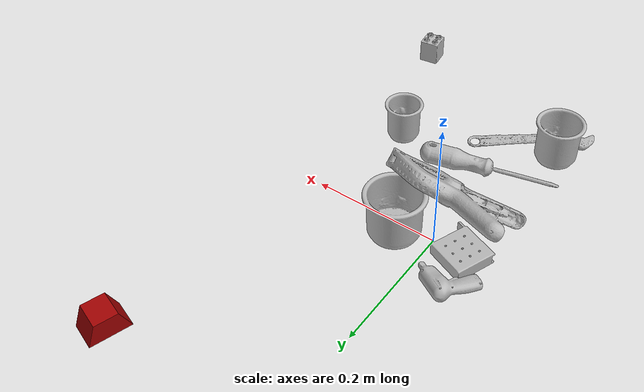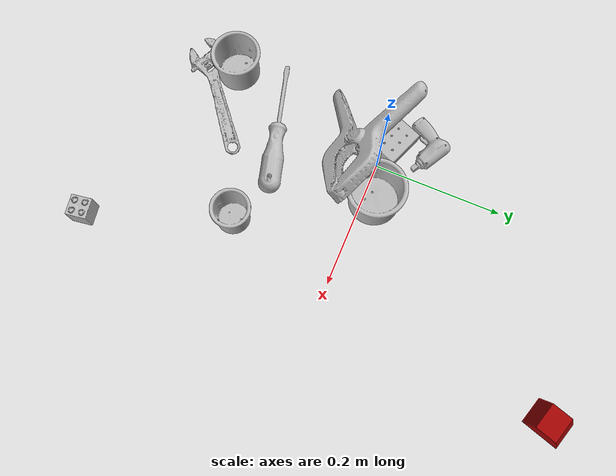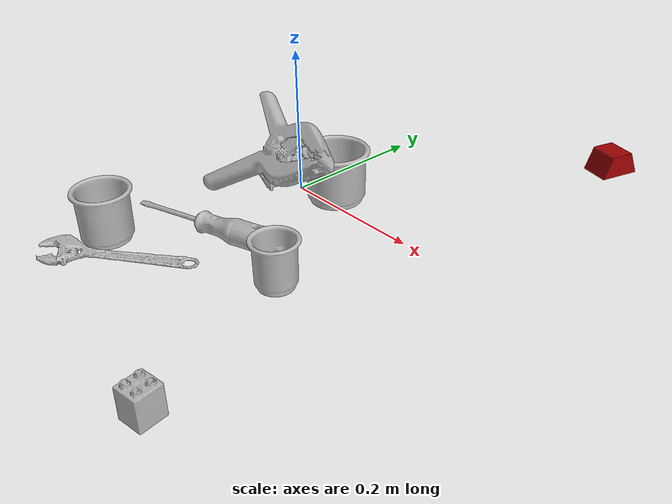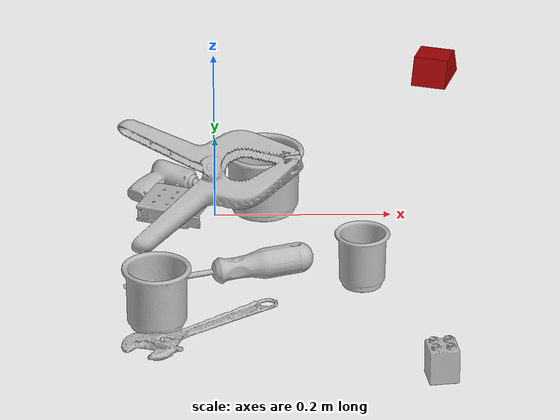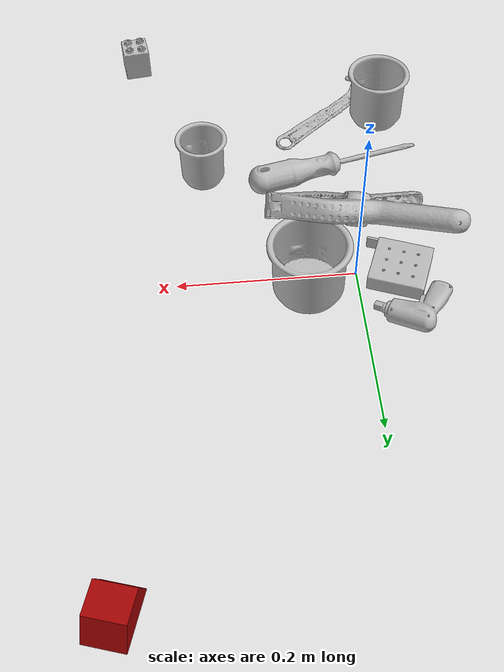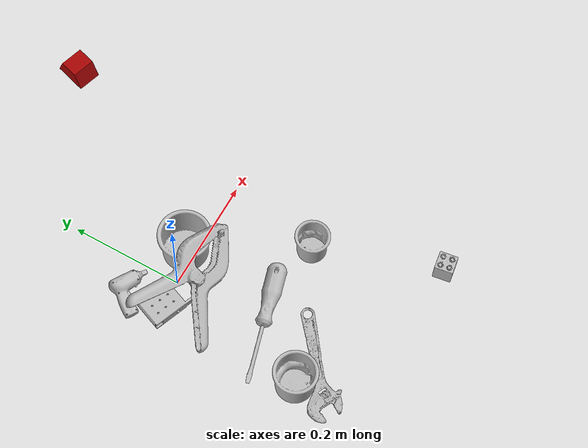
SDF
<sdf version="1.4">
  <world name="default">
    <light name="light1" type="point">
      <pose>0 0 1 0 0 0</pose>
      <diffuse>3 3 3 1</diffuse>
      <specular>3 3 3 1</specular>
    </light>
    <light name="light2" type="point">
      <pose>0 0.5 2 0 0 0</pose>
      <diffuse>1 1 1 1</diffuse>
      <specular>1 1 1 1</specular>
    </light>
    <light name="light3" type="point">
      <pose>0 0.5 2 0 0 0</pose>
      <diffuse>3 3 3 1</diffuse>
      <specular>3 3 3 1</specular>
    </light>
    <scene>
      <ambient>0.7 0.7 0.7</ambient>
    </scene>
    <model name="cup1">
      <link name="link_cup1">
        <collision name="default">
          <geometry>
            <mesh>
              <uri>model://b_cups/collision_meshes/collision.obj</uri>
              <scale>1.0 1.0 1.0</scale>
            </mesh>
          </geometry>
          <surface>
            <friction>
              <ode>
                <mu>0.5</mu>
                <mu2>0.5</mu2>
              </ode>
            </friction>
          <contact>
        <ode>
            <max_vel>0</max_vel>
            <min_depth>0.0001</min_depth>
            <kp>1e8</kp>
        </ode>
    </contact></surface>
        </collision>
        <visual name="default">
          <geometry>
            <mesh>
              <uri>model://b_cups/visual_meshes/visual.dae</uri>
              <scale>1.0 1.0 1.0</scale>
            </mesh>
          </geometry>
        </visual>
        <inertial>
          <mass>0.03190340846776962</mass>
          <pose>0.0005182004533708096 0.0018058607820421457 -0.0013381806202232838 0.11356328214070865 0.03872483993123738 -0.34569243052877063</pose>
          <inertia>
            <ixx>2.0883017e-05</ixx>
            <iyy>2.0486541e-05</iyy>
            <izz>1.7572664e-05</izz>
            <ixy>0</ixy>
            <ixz>0</ixz>
            <iyz>0</iyz>
          </inertia>
        </inertial>
      </link>
      <pose>0.1623895913362503 -0.1688312143087387 0.031996093690395355 -0.007642965934186181 -0.003802756244304658 -0.9013441044563409</pose>
    </model>
    <model name="cup2">
      <link name="link_cup2">
        <collision name="default">
          <geometry>
            <mesh>
              <uri>model://e_cups/collision_meshes/collision.obj</uri>
              <scale>1.0 1.0 1.0</scale>
            </mesh>
          </geometry>
          <surface>
            <friction>
              <ode>
                <mu>0.5</mu>
                <mu2>0.5</mu2>
              </ode>
            </friction>
          <contact>
        <ode>
            <max_vel>0</max_vel>
            <min_depth>0.0001</min_depth>
            <kp>1e8</kp>
        </ode>
    </contact></surface>
        </collision>
        <visual name="default">
          <geometry>
            <mesh>
              <uri>model://e_cups/visual_meshes/visual.dae</uri>
              <scale>1.0 1.0 1.0</scale>
            </mesh>
          </geometry>
        </visual>
        <inertial>
          <mass>0.09350046515464783</mass>
          <pose>0.0011355748865753412 0.0028797851409763098 -0.0038829720579087734 0.69524087765449 0.08767898447354379 -0.5235249697507389</pose>
          <inertia>
            <ixx>8.2444014e-05</ixx>
            <iyy>8.6165805e-05</iyy>
            <izz>7.882601e-05</izz>
            <ixy>0</ixy>
            <ixz>0</ixz>
            <iyz>0</iyz>
          </inertia>
        </inertial>
      </link>
      <pose>-0.062041278928518295 -0.2596222758293152 0.03559989109635353 6.816544328636379e-05 -8.554520574903477e-05 -0.2576751412432199</pose>
    </model>
    <model name="cup3">
      <link name="link_cup3">
        <collision name="default">
          <geometry>
            <mesh>
              <uri>model://h_cups/collision_meshes/collision.obj</uri>
              <scale>1.0 1.0 1.0</scale>
            </mesh>
          </geometry>
          <surface>
            <friction>
              <ode>
                <mu>0.5</mu>
                <mu2>0.5</mu2>
              </ode>
            </friction>
          <contact>
        <ode>
            <max_vel>0</max_vel>
            <min_depth>0.0001</min_depth>
            <kp>1e8</kp>
        </ode>
    </contact></surface>
        </collision>
        <visual name="default">
          <geometry>
            <mesh>
              <uri>model://h_cups/visual_meshes/visual.dae</uri>
              <scale>1.0 1.0 1.0</scale>
            </mesh>
          </geometry>
        </visual>
        <inertial>
          <mass>0.05626832693815231</mass>
          <pose>-2.7024709197576158e-05 0.00023018589126877487 -0.0018405396258458495 -0.02436208446622447 0.06545190020339471 0.12885609358770897</pose>
          <inertia>
            <ixx>7.2667885e-05</ixx>
            <iyy>7.180077e-05</iyy>
            <izz>7.620872e-05</izz>
            <ixy>0</ixy>
            <ixz>0</ixz>
            <iyz>0</iyz>
          </inertia>
        </inertial>
      </link>
      <pose>0.055808089673519135 0.016746850684285164 0.037758078426122665 -1.1330100440671588e-05 -4.4573700634010954e-05 1.077280387403158</pose>
    </model>
    <model name="toy1">
      <link name="link_toy1">
        <collision name="default">
          <geometry>
            <mesh>
              <uri>model://nine_hole_peg_test/collision_meshes/collision.obj</uri>
              <scale>0.5 0.5 0.5</scale>
            </mesh>
          </geometry>
          <surface>
            <friction>
              <ode>
                <mu>0.5</mu>
                <mu2>0.5</mu2>
              </ode>
            </friction>
          <contact>
        <ode>
            <max_vel>0</max_vel>
            <min_depth>0.0001</min_depth>
            <kp>1e8</kp>
        </ode>
    </contact></surface>
        </collision>
        <visual name="default">
          <geometry>
            <mesh>
              <uri>model://nine_hole_peg_test/visual_meshes/visual.dae</uri>
              <scale>0.5 0.5 0.5</scale>
            </mesh>
          </geometry>
        </visual>
        <inertial>
          <mass>0.06318242102861404</mass>
          <pose>-0.0023086941801011562 -0.004823808092623949 1.3230346667114645e-05 -0.0014666789322941463 0.0007194184826049595 -0.6342412444031488</pose>
          <inertia>
            <ixx>2.4699024e-05</ixx>
            <iyy>2.3061213e-05</iyy>
            <izz>4.327997e-05</izz>
            <ixy>0</ixy>
            <ixz>0</ixz>
            <iyz>0</iyz>
          </inertia>
        </inertial>
      </link>
      <pose>-0.04427511245012283 0.0001705207396298647 0.010385504923760891 5.901947707190471e-09 -9.6979317607124e-09 -1.9387046977805398</pose>
    </model>
    <model name="toy2">
      <link name="link_toy2">
        <collision name="default">
          <geometry>
            <mesh>
              <uri>model://prism/collision_meshes/collision.obj</uri>
              <scale>0.5 0.5 0.5</scale>
            </mesh>
          </geometry>
          <surface>
            <friction>
              <ode>
                <mu>0.5</mu>
                <mu2>0.5</mu2>
              </ode>
            </friction>
          <contact>
        <ode>
            <max_vel>0</max_vel>
            <min_depth>0.0001</min_depth>
            <kp>1e8</kp>
        </ode>
    </contact></surface>
        </collision>
        <visual name="default">
          <geometry>
            <mesh>
              <uri>model://prism/visual_meshes/visual.dae</uri>
              <scale>0.5 0.5 0.5</scale>
            </mesh>
          </geometry>
        </visual>
        <inertial>
          <mass>0.058882199227809906</mass>
          <pose>-4.92679828312248e-05 -2.480786349678965e-07 -0.0016934550367295742 0.0 0.00655918030046738 0.0</pose>
          <inertia>
            <ixx>1.32851155e-05</ixx>
            <iyy>1.6055232e-05</iyy>
            <izz>1.9665738e-05</izz>
            <ixy>0</ixy>
            <ixz>0</ixz>
            <iyz>0</iyz>
          </inertia>
        </inertial>
      </link>
      <pose>0.26587051153182983 0.36455923318862915 0.016085000708699226 -9.46710539623763e-09 2.322091902887721e-08 -1.8678262701909547</pose>
    </model>
    <model name="toy3">
      <link name="link_toy3">
        <collision name="default">
          <geometry>
            <mesh>
              <uri>model://b_toy_airplane/collision_meshes/collision.obj</uri>
              <scale>0.5 0.5 0.5</scale>
            </mesh>
          </geometry>
          <surface>
            <friction>
              <ode>
                <mu>0.5</mu>
                <mu2>0.5</mu2>
              </ode>
            </friction>
          <contact>
        <ode>
            <max_vel>0</max_vel>
            <min_depth>0.0001</min_depth>
            <kp>1e8</kp>
        </ode>
    </contact></surface>
        </collision>
        <visual name="default">
          <geometry>
            <mesh>
              <uri>model://b_toy_airplane/visual_meshes/visual.dae</uri>
              <scale>0.5 0.5 0.5</scale>
            </mesh>
          </geometry>
        </visual>
        <inertial>
          <mass>0.06070837751030922</mass>
          <pose>0.002540682442486286 0.0020077924709767103 0.0047715334221720695 -0.040018114249042835 -0.04022179473329346 -0.5601502235260123</pose>
          <inertia>
            <ixx>2.8176557e-05</ixx>
            <iyy>1.1262445e-05</iyy>
            <izz>3.5054447e-05</izz>
            <ixy>0</ixy>
            <ixz>0</ixz>
            <iyz>0</iyz>
          </inertia>
        </inertial>
      </link>
      <pose>-0.06017286330461502 0.06652162969112396 0.008488936349749565 0.18487656078093864 0.11349923440450477 -0.5279779848973387</pose>
    </model>
    <model name="toy4">
      <link name="link_toy4">
        <collision name="default">
          <geometry>
            <mesh>
              <uri>model://f_lego_duplo/collision_meshes/collision.obj</uri>
              <scale>1.0 1.0 1.0</scale>
            </mesh>
          </geometry>
          <surface>
            <friction>
              <ode>
                <mu>0.5</mu>
                <mu2>0.5</mu2>
              </ode>
            </friction>
          <contact>
        <ode>
            <max_vel>0</max_vel>
            <min_depth>0.0001</min_depth>
            <kp>1e8</kp>
        </ode>
    </contact></surface>
        </collision>
        <visual name="default">
          <geometry>
            <mesh>
              <uri>model://f_lego_duplo/visual_meshes/visual.dae</uri>
              <scale>1.0 1.0 1.0</scale>
            </mesh>
          </geometry>
        </visual>
        <inertial>
          <mass>0.029542475938796997</mass>
          <pose>2.369392677792348e-05 0.00013393184053711593 0.0018837879179045558 0.029838766168002753 -0.014424835911361083 -0.6756712748416152</pose>
          <inertia>
            <ixx>6.2424897e-06</ixx>
            <iyy>6.2981026e-06</iyy>
            <izz>5.4187462e-06</izz>
            <ixy>0</ixy>
            <ixz>0</ixz>
            <iyz>0</iyz>
          </inertia>
        </inertial>
      </link>
      <pose>0.24089987576007843 -0.38156917691230774 0.021840089932084084 0.0002899426849184134 0.0022519618493731723 0.14446328917346252</pose>
    </model>
    <model name="hardware1">
      <link name="link_hardware1">
        <collision name="default">
          <geometry>
            <mesh>
              <uri>model://extra_large_clamp/collision_meshes/collision.obj</uri>
              <scale>1.0 1.0 1.0</scale>
            </mesh>
          </geometry>
          <surface>
            <friction>
              <ode>
                <mu>0.5</mu>
                <mu2>0.5</mu2>
              </ode>
            </friction>
          <contact>
        <ode>
            <max_vel>0</max_vel>
            <min_depth>0.0001</min_depth>
            <kp>1e8</kp>
        </ode>
    </contact></surface>
        </collision>
        <visual name="default">
          <geometry>
            <mesh>
              <uri>model://extra_large_clamp/visual_meshes/visual.dae</uri>
              <scale>1.0 1.0 1.0</scale>
            </mesh>
          </geometry>
        </visual>
        <inertial>
          <mass>0.20469266176223755</mass>
          <pose>0.00323202065192163 -7.615445792907849e-05 0.0003172155993524939 0.013786991356050505 -0.0005066836095273004 -0.000893628832478523</pose>
          <inertia>
            <ixx>0.00031109934</ixx>
            <iyy>0.0005356169</iyy>
            <izz>0.00081831246</izz>
            <ixy>0</ixy>
            <ixz>0</ixz>
            <iyz>0</iyz>
          </inertia>
        </inertial>
      </link>
      <pose>-0.0010358307044953108 -0.03356818109750748 0.07013119757175446 0.6502820474488693 -0.15665476991039437 0.012147531891372798</pose>
    </model>
    <model name="hardware2">
      <link name="link_hardware2">
        <collision name="default">
          <geometry>
            <mesh>
              <uri>model://flat_screwdriver/collision_meshes/collision.obj</uri>
              <scale>1.0 1.0 1.0</scale>
            </mesh>
          </geometry>
          <surface>
            <friction>
              <ode>
                <mu>0.5</mu>
                <mu2>0.5</mu2>
              </ode>
            </friction>
          <contact>
        <ode>
            <max_vel>0</max_vel>
            <min_depth>0.0001</min_depth>
            <kp>1e8</kp>
        </ode>
    </contact></surface>
        </collision>
        <visual name="default">
          <geometry>
            <mesh>
              <uri>model://flat_screwdriver/visual_meshes/visual.dae</uri>
              <scale>1.0 1.0 1.0</scale>
            </mesh>
          </geometry>
        </visual>
        <inertial>
          <mass>0.09510745853185654</mass>
          <pose>-0.048918697983026505 -0.0006576799787580967 -0.000614091579336673 -0.5614762322958965 -0.003233723970645699 0.006982278511552064</pose>
          <inertia>
            <ixx>1.1236876e-05</ixx>
            <iyy>0.00014265477</iyy>
            <izz>0.00014258873</izz>
            <ixy>0</ixy>
            <ixz>0</ixz>
            <iyz>0</iyz>
          </inertia>
        </inertial>
      </link>
      <pose>0.006443183869123459 -0.16377617418766022 0.015338653698563576 -0.21441128837182827 0.040694514196464776 -2.8837541251464938</pose>
    </model>
    <model name="hardware3">
      <link name="link_hardware3">
        <collision name="default">
          <geometry>
            <mesh>
              <uri>model://adjustable_wrench/collision_meshes/collision.obj</uri>
              <scale>1.0 1.0 1.0</scale>
            </mesh>
          </geometry>
          <surface>
            <friction>
              <ode>
                <mu>0.5</mu>
                <mu2>0.5</mu2>
              </ode>
            </friction>
          <contact>
        <ode>
            <max_vel>0</max_vel>
            <min_depth>0.0001</min_depth>
            <kp>1e8</kp>
        </ode>
    </contact></surface>
        </collision>
        <visual name="default">
          <geometry>
            <mesh>
              <uri>model://adjustable_wrench/visual_meshes/visual.dae</uri>
              <scale>1.0 1.0 1.0</scale>
            </mesh>
          </geometry>
        </visual>
        <inertial>
          <mass>0.02741360291838646</mass>
          <pose>0.03740980476140976 -0.002896887017413974 -0.0011149230413138866 -0.0144733350781748 0.006656025939833136 -0.010954202845362587</pose>
          <inertia>
            <ixx>5.610589e-06</ixx>
            <iyy>6.5665416e-05</iyy>
            <izz>7.0977985e-05</izz>
            <ixy>0</ixy>
            <ixz>0</ixz>
            <iyz>0</iyz>
          </inertia>
        </inertial>
      </link>
      <pose>-0.013989575207233429 -0.27895107865333557 0.0061250473372638226 0.04675843817296551 -0.029270722633682206 -2.484710953534059</pose>
    </model>
  <physics type="ode">
      <max_contacts>50</max_contacts>
      <ode>
        <solver>
          <type>quick</type>
          <iters>75</iters>
        </solver>
        <constraints>
          <contact_max_correcting_vel>0</contact_max_correcting_vel>
          <contact_surface_layer>0</contact_surface_layer>
        </constraints>
      </ode>
    </physics></world>
</sdf>
